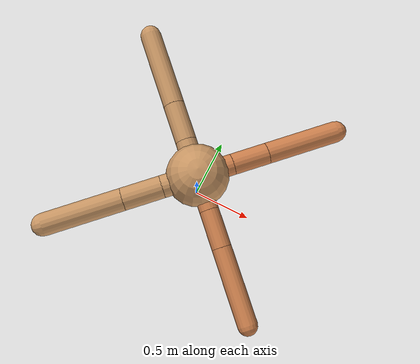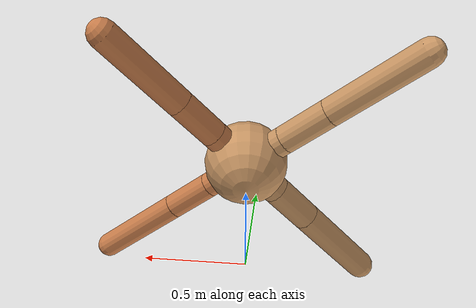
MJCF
<?xml version="1.0" ?>
<mujoco model="ant">

	<compiler angle="degree" coordinate="local" inertiafromgeom="true"/>

	<option integrator="RK4" timestep="0.01"/>

	<custom>

		<numeric data="0.0 0.0 0.55 1.0 0.0 0.0 0.0 0.0 1.0 0.0 -1.0 0.0 -1.0 0.0 1.0" name="init_qpos"/>

	</custom>

	<default>

		<joint armature="1" damping="1" limited="true"/>

		<geom conaffinity="0" condim="3" density="5.0" friction="1.5 0.1 0.1" margin="0.01" rgba="0.8 0.6 0.4 1"/>

	</default>

	<worldbody>

		<body name="torso" pos="0 0 0.75">

			<geom name="torso_geom" pos="0 0 0" size="0.24338021312775937" type="sphere"/>

			<!--joint armature="0" damping="0" limited="false" margin="0.01" name="root" pos="0 0 0" type="free"/-->

			<body name="front_left_leg" pos="0 0 0">

				<geom fromto="0 0 0 0.2 0.2 0" name="aux_1_geom" size="0.0815728163239467" type="capsule" rgba=".8 .5 .3 1"/>

				<body name="aux_1" pos="0.2 0.2 0">

					<joint axis="0 0 1" name="hip_1" pos="0.0 0.0 0.0" range="-40 40" type="hinge"/>

					<geom fromto="0 0 0 0.1981685245131224 0.1981685245131224 0" name="left_leg_geom" size="0.0815728163239467" type="capsule" rgba=".8 .5 .3 1"/>

					<body pos="0.1981685245131224 0.1981685245131224 0" name="front_left_foot">

						<joint axis="-1 1 0" name="ankle_1" pos="0.0 0.0 0.0" range="30 100" type="hinge"/>

						<geom fromto="0 0 0 0.3963370490262448 0.3963370490262448 0" name="left_ankle_geom" size="0.0815728163239467" type="capsule" rgba=".8 .5 .3 1"/>

					</body>

				</body>

			</body>

			<body name="front_right_leg" pos="0 0 0">

				<geom fromto="0 0 0 -0.2 0.2 0" name="aux_2_geom" size="0.08297184430112277" type="capsule"/>

				<body name="aux_2" pos="-0.2 0.2 0">

					<joint axis="0 0 1" name="hip_2" pos="0.0 0.0 0.0" range="-40 40" type="hinge"/>

					<geom fromto="0 0 0 -0.21803697660166743 0.21803697660166743 0" name="right_leg_geom" size="0.08297184430112277" type="capsule"/>

					<body pos="-0.21803697660166743 0.21803697660166743 0" name="front_right_foot">

						<joint axis="1 1 0" name="ankle_2" pos="0.0 0.0 0.0" range="-100 -30" type="hinge"/>

						<geom fromto="0 0 0 -0.43607395320333486 0.43607395320333486 0" name="right_ankle_geom" size="0.08297184430112277" type="capsule"/>

					</body>

				</body>

			</body>

			<body name="left_back_leg" pos="0 0 0">

				<geom fromto="0 0 0 -0.2 -0.2 0" name="aux_3_geom" size="0.08777046497141118" type="capsule"/>

				<body name="aux_3" pos="-0.2 -0.2 0">

					<joint axis="0 0 1" name="hip_3" pos="0.0 0.0 0.0" range="-40 40" type="hinge"/>

					<geom fromto="0 0 0 -0.21921089882247316 -0.21921089882247316 0" name="back_leg_geom" size="0.08777046497141118" type="capsule"/>

					<body pos="-0.21921089882247316 -0.21921089882247316 0" name="left_back_foot">

						<joint axis="-1 1 0" name="ankle_3" pos="0.0 0.0 0.0" range="-100 -30" type="hinge"/>

						<geom fromto="0 0 0 -0.4384217976449463 -0.4384217976449463 0" name="third_ankle_geom" size="0.08777046497141118" type="capsule"/>

					</body>

				</body>

			</body>

			<body name="right_back_leg" pos="0 0 0">

				<geom fromto="0 0 0 0.2 -0.2 0" name="aux_4_geom" size="0.07466092634498384" type="capsule" rgba=".8 .5 .3 1"/>

				<body name="aux_4" pos="0.2 -0.2 0">

					<joint axis="0 0 1" name="hip_4" pos="0.0 0.0 0.0" range="-40 40" type="hinge"/>

					<geom fromto="0 0 0 0.20648492446947758 -0.20648492446947758 0" name="rightback_leg_geom" size="0.07466092634498384" type="capsule" rgba=".8 .5 .3 1"/>

					<body pos="0.20648492446947758 -0.20648492446947758 0" name="right_back_foot">

						<joint axis="1 1 0" name="ankle_4" pos="0.0 0.0 0.0" range="30 100" type="hinge"/>

						<geom fromto="0 0 0 0.41296984893895516 -0.41296984893895516 0" name="fourth_ankle_geom" size="0.07466092634498384" type="capsule" rgba=".8 .5 .3 1"/>

					</body>

				</body>

			</body>

		</body>

	</worldbody>

	<actuator>

		<motor ctrllimited="true" ctrlrange="-1.0 1.0" joint="hip_4" gear="150"/>

		<motor ctrllimited="true" ctrlrange="-1.0 1.0" joint="ankle_4" gear="150"/>

		<motor ctrllimited="true" ctrlrange="-1.0 1.0" joint="hip_1" gear="150"/>

		<motor ctrllimited="true" ctrlrange="-1.0 1.0" joint="ankle_1" gear="150"/>

		<motor ctrllimited="true" ctrlrange="-1.0 1.0" joint="hip_2" gear="150"/>

		<motor ctrllimited="true" ctrlrange="-1.0 1.0" joint="ankle_2" gear="150"/>

		<motor ctrllimited="true" ctrlrange="-1.0 1.0" joint="hip_3" gear="150"/>

		<motor ctrllimited="true" ctrlrange="-1.0 1.0" joint="ankle_3" gear="150"/>

	</actuator>

</mujoco>
